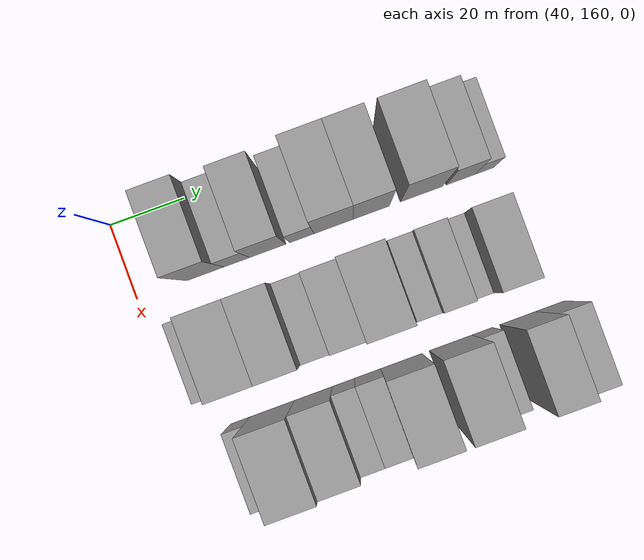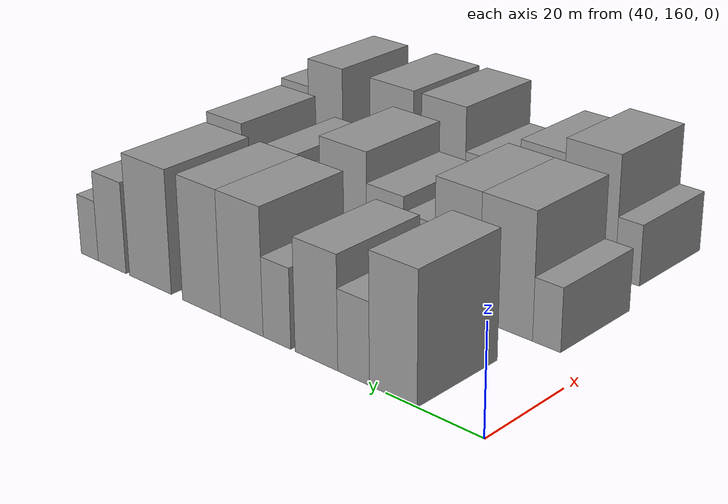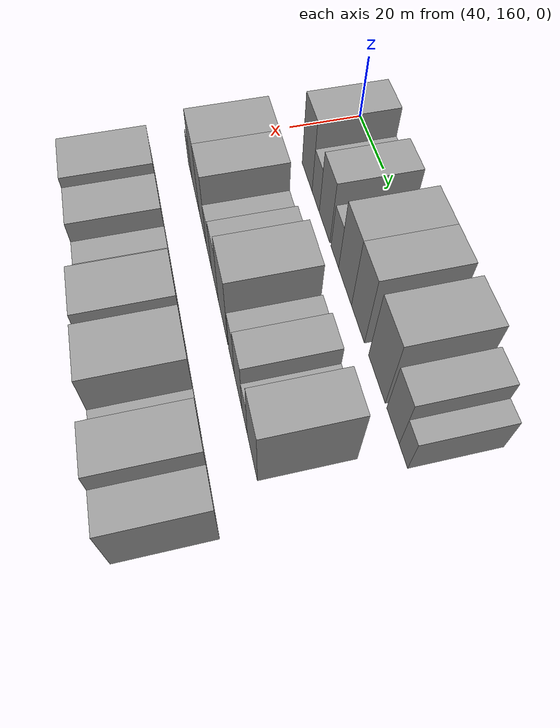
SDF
<sdf version="1.6">
 <world name="default">
  <model name="building_59">
   <static>1</static>
   <pose>50.0000 178.5469 0 0.000000 0.000000 0.000000</pose>
   <link name="link">
    <pose>0 0 12.00 0 0 0</pose>
    <collision name="collision"><geometry><box><size>20.0000 10.1099 24.0000</size></box></geometry></collision>
    <visual name="visual">
     <cast_shadows>0</cast_shadows>
     <geometry><box><size>20.0000 10.1099 24.0000</size></box></geometry>
     <material>
      <script>
       <uri>model://grey_wall/materials/scripts</uri>
       <uri>model://grey_wall/materials/textures</uri>
       <name>vrc/grey_wall</name>
      </script>
     </material>
    </visual>
   </link>
  </model>
  <model name="building_60">
   <static>1</static>
   <pose>50.0000 187.0671 0 0.000000 0.000000 0.000000</pose>
   <link name="link">
    <pose>0 0 7.50 0 0 0</pose>
    <collision name="collision"><geometry><box><size>20.0000 6.9304 15.0000</size></box></geometry></collision>
    <visual name="visual">
     <cast_shadows>0</cast_shadows>
     <geometry><box><size>20.0000 6.9304 15.0000</size></box></geometry>
     <material>
      <script>
       <uri>model://grey_wall/materials/scripts</uri>
       <uri>model://grey_wall/materials/textures</uri>
       <name>vrc/grey_wall</name>
      </script>
     </material>
    </visual>
   </link>
  </model>
  <model name="building_61">
   <static>1</static>
   <pose>50.0000 195.4137 0 0.000000 0.000000 0.000000</pose>
   <link name="link">
    <pose>0 0 10.50 0 0 0</pose>
    <collision name="collision"><geometry><box><size>20.0000 9.7629 21.0000</size></box></geometry></collision>
    <visual name="visual">
     <cast_shadows>0</cast_shadows>
     <geometry><box><size>20.0000 9.7629 21.0000</size></box></geometry>
     <material>
      <script>
       <uri>model://grey_wall/materials/scripts</uri>
       <uri>model://grey_wall/materials/textures</uri>
       <name>vrc/grey_wall</name>
      </script>
     </material>
    </visual>
   </link>
  </model>
  <model name="building_62">
   <static>1</static>
   <pose>50.0000 204.5835 0 0.000000 0.000000 0.000000</pose>
   <link name="link">
    <pose>0 0 7.50 0 0 0</pose>
    <collision name="collision"><geometry><box><size>20.0000 6.5766 15.0000</size></box></geometry></collision>
    <visual name="visual">
     <cast_shadows>0</cast_shadows>
     <geometry><box><size>20.0000 6.5766 15.0000</size></box></geometry>
     <material>
      <script>
       <uri>model://grey_wall/materials/scripts</uri>
       <uri>model://grey_wall/materials/textures</uri>
       <name>vrc/grey_wall</name>
      </script>
     </material>
    </visual>
   </link>
  </model>
  <model name="building_63">
   <static>1</static>
   <pose>50.0000 213.1306 0 0.000000 0.000000 0.000000</pose>
   <link name="link">
    <pose>0 0 12.00 0 0 0</pose>
    <collision name="collision"><geometry><box><size>20.0000 10.5175 24.0000</size></box></geometry></collision>
    <visual name="visual">
     <cast_shadows>0</cast_shadows>
     <geometry><box><size>20.0000 10.5175 24.0000</size></box></geometry>
     <material>
      <script>
       <uri>model://grey_wall/materials/scripts</uri>
       <uri>model://grey_wall/materials/textures</uri>
       <name>vrc/grey_wall</name>
      </script>
     </material>
    </visual>
   </link>
  </model>
  <model name="building_64">
   <static>1</static>
   <pose>50.0000 223.2985 0 0.000000 0.000000 0.000000</pose>
   <link name="link">
    <pose>0 0 12.00 0 0 0</pose>
    <collision name="collision"><geometry><box><size>20.0000 9.8183 24.0000</size></box></geometry></collision>
    <visual name="visual">
     <cast_shadows>0</cast_shadows>
     <geometry><box><size>20.0000 9.8183 24.0000</size></box></geometry>
     <material>
      <script>
       <uri>model://grey_wall/materials/scripts</uri>
       <uri>model://grey_wall/materials/textures</uri>
       <name>vrc/grey_wall</name>
      </script>
     </material>
    </visual>
   </link>
  </model>
  <model name="building_65">
   <static>1</static>
   <pose>50.0000 236.9011 0 0.000000 0.000000 0.000000</pose>
   <link name="link">
    <pose>0 0 12.00 0 0 0</pose>
    <collision name="collision"><geometry><box><size>20.0000 11.3869 24.0000</size></box></geometry></collision>
    <visual name="visual">
     <cast_shadows>0</cast_shadows>
     <geometry><box><size>20.0000 11.3869 24.0000</size></box></geometry>
     <material>
      <script>
       <uri>model://grey_wall/materials/scripts</uri>
       <uri>model://grey_wall/materials/textures</uri>
       <name>vrc/grey_wall</name>
      </script>
     </material>
    </visual>
   </link>
  </model>
  <model name="building_66">
   <static>1</static>
   <pose>50.0000 247.5354 0 0.000000 0.000000 0.000000</pose>
   <link name="link">
    <pose>0 0 9.00 0 0 0</pose>
    <collision name="collision"><geometry><box><size>20.0000 7.8816 18.0000</size></box></geometry></collision>
    <visual name="visual">
     <cast_shadows>0</cast_shadows>
     <geometry><box><size>20.0000 7.8816 18.0000</size></box></geometry>
     <material>
      <script>
       <uri>model://grey_wall/materials/scripts</uri>
       <uri>model://grey_wall/materials/textures</uri>
       <name>vrc/grey_wall</name>
      </script>
     </material>
    </visual>
   </link>
  </model>
  <model name="building_67">
   <static>1</static>
   <pose>50.0000 253.9852 0 0.000000 0.000000 0.000000</pose>
   <link name="link">
    <pose>0 0 6.00 0 0 0</pose>
    <collision name="collision"><geometry><box><size>20.0000 5.0180 12.0000</size></box></geometry></collision>
    <visual name="visual">
     <cast_shadows>0</cast_shadows>
     <geometry><box><size>20.0000 5.0180 12.0000</size></box></geometry>
     <material>
      <script>
       <uri>model://grey_wall/materials/scripts</uri>
       <uri>model://grey_wall/materials/textures</uri>
       <name>vrc/grey_wall</name>
      </script>
     </material>
    </visual>
   </link>
  </model>
  <model name="building_134">
   <static>1</static>
   <pose>79.0000 170.1653 0 0.000000 0.000000 0.000000</pose>
   <link name="link">
    <pose>0 0 6.00 0 0 0</pose>
    <collision name="collision"><geometry><box><size>20.0000 5.8494 12.0000</size></box></geometry></collision>
    <visual name="visual">
     <cast_shadows>0</cast_shadows>
     <geometry><box><size>20.0000 5.8494 12.0000</size></box></geometry>
     <material>
      <script>
       <uri>model://grey_wall/materials/scripts</uri>
       <uri>model://grey_wall/materials/textures</uri>
       <name>vrc/grey_wall</name>
      </script>
     </material>
    </visual>
   </link>
  </model>
  <model name="building_135">
   <static>1</static>
   <pose>79.0000 178.8191 0 0.000000 0.000000 0.000000</pose>
   <link name="link">
    <pose>0 0 12.00 0 0 0</pose>
    <collision name="collision"><geometry><box><size>20.0000 11.4582 24.0000</size></box></geometry></collision>
    <visual name="visual">
     <cast_shadows>0</cast_shadows>
     <geometry><box><size>20.0000 11.4582 24.0000</size></box></geometry>
     <material>
      <script>
       <uri>model://grey_wall/materials/scripts</uri>
       <uri>model://grey_wall/materials/textures</uri>
       <name>vrc/grey_wall</name>
      </script>
     </material>
    </visual>
   </link>
  </model>
  <model name="building_136">
   <static>1</static>
   <pose>79.0000 189.6405 0 0.000000 0.000000 0.000000</pose>
   <link name="link">
    <pose>0 0 12.00 0 0 0</pose>
    <collision name="collision"><geometry><box><size>20.0000 10.1847 24.0000</size></box></geometry></collision>
    <visual name="visual">
     <cast_shadows>0</cast_shadows>
     <geometry><box><size>20.0000 10.1847 24.0000</size></box></geometry>
     <material>
      <script>
       <uri>model://grey_wall/materials/scripts</uri>
       <uri>model://grey_wall/materials/textures</uri>
       <name>vrc/grey_wall</name>
      </script>
     </material>
    </visual>
   </link>
  </model>
  <model name="building_137">
   <static>1</static>
   <pose>79.0000 198.3490 0 0.000000 0.000000 0.000000</pose>
   <link name="link">
    <pose>0 0 7.50 0 0 0</pose>
    <collision name="collision"><geometry><box><size>20.0000 7.2322 15.0000</size></box></geometry></collision>
    <visual name="visual">
     <cast_shadows>0</cast_shadows>
     <geometry><box><size>20.0000 7.2322 15.0000</size></box></geometry>
     <material>
      <script>
       <uri>model://grey_wall/materials/scripts</uri>
       <uri>model://grey_wall/materials/textures</uri>
       <name>vrc/grey_wall</name>
      </script>
     </material>
    </visual>
   </link>
  </model>
  <model name="building_138">
   <static>1</static>
   <pose>79.0000 206.3833 0 0.000000 0.000000 0.000000</pose>
   <link name="link">
    <pose>0 0 9.00 0 0 0</pose>
    <collision name="collision"><geometry><box><size>20.0000 8.8365 18.0000</size></box></geometry></collision>
    <visual name="visual">
     <cast_shadows>0</cast_shadows>
     <geometry><box><size>20.0000 8.8365 18.0000</size></box></geometry>
     <material>
      <script>
       <uri>model://grey_wall/materials/scripts</uri>
       <uri>model://grey_wall/materials/textures</uri>
       <name>vrc/grey_wall</name>
      </script>
     </material>
    </visual>
   </link>
  </model>
  <model name="building_139">
   <static>1</static>
   <pose>79.0000 216.5638 0 0.000000 0.000000 0.000000</pose>
   <link name="link">
    <pose>0 0 12.00 0 0 0</pose>
    <collision name="collision"><geometry><box><size>20.0000 11.5245 24.0000</size></box></geometry></collision>
    <visual name="visual">
     <cast_shadows>0</cast_shadows>
     <geometry><box><size>20.0000 11.5245 24.0000</size></box></geometry>
     <material>
      <script>
       <uri>model://grey_wall/materials/scripts</uri>
       <uri>model://grey_wall/materials/textures</uri>
       <name>vrc/grey_wall</name>
      </script>
     </material>
    </visual>
   </link>
  </model>
  <model name="building_140">
   <static>1</static>
   <pose>79.0000 226.4396 0 0.000000 0.000000 0.000000</pose>
   <link name="link">
    <pose>0 0 7.50 0 0 0</pose>
    <collision name="collision"><geometry><box><size>20.0000 6.2270 15.0000</size></box></geometry></collision>
    <visual name="visual">
     <cast_shadows>0</cast_shadows>
     <geometry><box><size>20.0000 6.2270 15.0000</size></box></geometry>
     <material>
      <script>
       <uri>model://grey_wall/materials/scripts</uri>
       <uri>model://grey_wall/materials/textures</uri>
       <name>vrc/grey_wall</name>
      </script>
     </material>
    </visual>
   </link>
  </model>
  <model name="building_141">
   <static>1</static>
   <pose>79.0000 233.5675 0 0.000000 0.000000 0.000000</pose>
   <link name="link">
    <pose>0 0 9.00 0 0 0</pose>
    <collision name="collision"><geometry><box><size>20.0000 8.0289 18.0000</size></box></geometry></collision>
    <visual name="visual">
     <cast_shadows>0</cast_shadows>
     <geometry><box><size>20.0000 8.0289 18.0000</size></box></geometry>
     <material>
      <script>
       <uri>model://grey_wall/materials/scripts</uri>
       <uri>model://grey_wall/materials/textures</uri>
       <name>vrc/grey_wall</name>
      </script>
     </material>
    </visual>
   </link>
  </model>
  <model name="building_142">
   <static>1</static>
   <pose>79.0000 240.2132 0 0.000000 0.000000 0.000000</pose>
   <link name="link">
    <pose>0 0 6.00 0 0 0</pose>
    <collision name="collision"><geometry><box><size>20.0000 5.2626 12.0000</size></box></geometry></collision>
    <visual name="visual">
     <cast_shadows>0</cast_shadows>
     <geometry><box><size>20.0000 5.2626 12.0000</size></box></geometry>
     <material>
      <script>
       <uri>model://grey_wall/materials/scripts</uri>
       <uri>model://grey_wall/materials/textures</uri>
       <name>vrc/grey_wall</name>
      </script>
     </material>
    </visual>
   </link>
  </model>
  <model name="building_143">
   <static>1</static>
   <pose>79.0000 247.6874 0 0.000000 0.000000 0.000000</pose>
   <link name="link">
    <pose>0 0 10.50 0 0 0</pose>
    <collision name="collision"><geometry><box><size>20.0000 9.6859 21.0000</size></box></geometry></collision>
    <visual name="visual">
     <cast_shadows>0</cast_shadows>
     <geometry><box><size>20.0000 9.6859 21.0000</size></box></geometry>
     <material>
      <script>
       <uri>model://grey_wall/materials/scripts</uri>
       <uri>model://grey_wall/materials/textures</uri>
       <name>vrc/grey_wall</name>
      </script>
     </material>
    </visual>
   </link>
  </model>
  <model name="building_213">
   <static>1</static>
   <pose>108.0000 173.9003 0 0.000000 0.000000 0.000000</pose>
   <link name="link">
    <pose>0 0 6.00 0 0 0</pose>
    <collision name="collision"><geometry><box><size>20.0000 5.3096 12.0000</size></box></geometry></collision>
    <visual name="visual">
     <cast_shadows>0</cast_shadows>
     <geometry><box><size>20.0000 5.3096 12.0000</size></box></geometry>
     <material>
      <script>
       <uri>model://grey_wall/materials/scripts</uri>
       <uri>model://grey_wall/materials/textures</uri>
       <name>vrc/grey_wall</name>
      </script>
     </material>
    </visual>
   </link>
  </model>
  <model name="building_214">
   <static>1</static>
   <pose>108.0000 182.5475 0 0.000000 0.000000 0.000000</pose>
   <link name="link">
    <pose>0 0 12.00 0 0 0</pose>
    <collision name="collision"><geometry><box><size>20.0000 11.9848 24.0000</size></box></geometry></collision>
    <visual name="visual">
     <cast_shadows>0</cast_shadows>
     <geometry><box><size>20.0000 11.9848 24.0000</size></box></geometry>
     <material>
      <script>
       <uri>model://grey_wall/materials/scripts</uri>
       <uri>model://grey_wall/materials/textures</uri>
       <name>vrc/grey_wall</name>
      </script>
     </material>
    </visual>
   </link>
  </model>
  <model name="building_215">
   <static>1</static>
   <pose>108.0000 193.6501 0 0.000000 0.000000 0.000000</pose>
   <link name="link">
    <pose>0 0 10.50 0 0 0</pose>
    <collision name="collision"><geometry><box><size>20.0000 10.2205 21.0000</size></box></geometry></collision>
    <visual name="visual">
     <cast_shadows>0</cast_shadows>
     <geometry><box><size>20.0000 10.2205 21.0000</size></box></geometry>
     <material>
      <script>
       <uri>model://grey_wall/materials/scripts</uri>
       <uri>model://grey_wall/materials/textures</uri>
       <name>vrc/grey_wall</name>
      </script>
     </material>
    </visual>
   </link>
  </model>
  <model name="building_216">
   <static>1</static>
   <pose>108.0000 201.7609 0 0.000000 0.000000 0.000000</pose>
   <link name="link">
    <pose>0 0 7.50 0 0 0</pose>
    <collision name="collision"><geometry><box><size>20.0000 6.0011 15.0000</size></box></geometry></collision>
    <visual name="visual">
     <cast_shadows>0</cast_shadows>
     <geometry><box><size>20.0000 6.0011 15.0000</size></box></geometry>
     <material>
      <script>
       <uri>model://grey_wall/materials/scripts</uri>
       <uri>model://grey_wall/materials/textures</uri>
       <name>vrc/grey_wall</name>
      </script>
     </material>
    </visual>
   </link>
  </model>
  <model name="building_217">
   <static>1</static>
   <pose>108.0000 208.2835 0 0.000000 0.000000 0.000000</pose>
   <link name="link">
    <pose>0 0 7.50 0 0 0</pose>
    <collision name="collision"><geometry><box><size>20.0000 7.0441 15.0000</size></box></geometry></collision>
    <visual name="visual">
     <cast_shadows>0</cast_shadows>
     <geometry><box><size>20.0000 7.0441 15.0000</size></box></geometry>
     <material>
      <script>
       <uri>model://grey_wall/materials/scripts</uri>
       <uri>model://grey_wall/materials/textures</uri>
       <name>vrc/grey_wall</name>
      </script>
     </material>
    </visual>
   </link>
  </model>
  <model name="building_218">
   <static>1</static>
   <pose>108.0000 217.3992 0 0.000000 0.000000 0.000000</pose>
   <link name="link">
    <pose>0 0 12.00 0 0 0</pose>
    <collision name="collision"><geometry><box><size>20.0000 11.1871 24.0000</size></box></geometry></collision>
    <visual name="visual">
     <cast_shadows>0</cast_shadows>
     <geometry><box><size>20.0000 11.1871 24.0000</size></box></geometry>
     <material>
      <script>
       <uri>model://grey_wall/materials/scripts</uri>
       <uri>model://grey_wall/materials/textures</uri>
       <name>vrc/grey_wall</name>
      </script>
     </material>
    </visual>
   </link>
  </model>
  <model name="building_219">
   <static>1</static>
   <pose>108.0000 230.7768 0 0.000000 0.000000 0.000000</pose>
   <link name="link">
    <pose>0 0 12.00 0 0 0</pose>
    <collision name="collision"><geometry><box><size>20.0000 11.5681 24.0000</size></box></geometry></collision>
    <visual name="visual">
     <cast_shadows>0</cast_shadows>
     <geometry><box><size>20.0000 11.5681 24.0000</size></box></geometry>
     <material>
      <script>
       <uri>model://grey_wall/materials/scripts</uri>
       <uri>model://grey_wall/materials/textures</uri>
       <name>vrc/grey_wall</name>
      </script>
     </material>
    </visual>
   </link>
  </model>
  <model name="building_220">
   <static>1</static>
   <pose>108.0000 239.3148 0 0.000000 0.000000 0.000000</pose>
   <link name="link">
    <pose>0 0 6.00 0 0 0</pose>
    <collision name="collision"><geometry><box><size>20.0000 5.5080 12.0000</size></box></geometry></collision>
    <visual name="visual">
     <cast_shadows>0</cast_shadows>
     <geometry><box><size>20.0000 5.5080 12.0000</size></box></geometry>
     <material>
      <script>
       <uri>model://grey_wall/materials/scripts</uri>
       <uri>model://grey_wall/materials/textures</uri>
       <name>vrc/grey_wall</name>
      </script>
     </material>
    </visual>
   </link>
  </model>
  <model name="building_221">
   <static>1</static>
   <pose>108.0000 248.9003 0 0.000000 0.000000 0.000000</pose>
   <link name="link">
    <pose>0 0 12.00 0 0 0</pose>
    <collision name="collision"><geometry><box><size>20.0000 9.6630 24.0000</size></box></geometry></collision>
    <visual name="visual">
     <cast_shadows>0</cast_shadows>
     <geometry><box><size>20.0000 9.6630 24.0000</size></box></geometry>
     <material>
      <script>
       <uri>model://grey_wall/materials/scripts</uri>
       <uri>model://grey_wall/materials/textures</uri>
       <name>vrc/grey_wall</name>
      </script>
     </material>
    </visual>
   </link>
  </model>
  <model name="building_222">
   <static>1</static>
   <pose>108.0000 257.6306 0 0.000000 0.000000 0.000000</pose>
   <link name="link">
    <pose>0 0 9.00 0 0 0</pose>
    <collision name="collision"><geometry><box><size>20.0000 7.7978 18.0000</size></box></geometry></collision>
    <visual name="visual">
     <cast_shadows>0</cast_shadows>
     <geometry><box><size>20.0000 7.7978 18.0000</size></box></geometry>
     <material>
      <script>
       <uri>model://grey_wall/materials/scripts</uri>
       <uri>model://grey_wall/materials/textures</uri>
       <name>vrc/grey_wall</name>
      </script>
     </material>
    </visual>
   </link>
  </model>
 </world>
</sdf>
